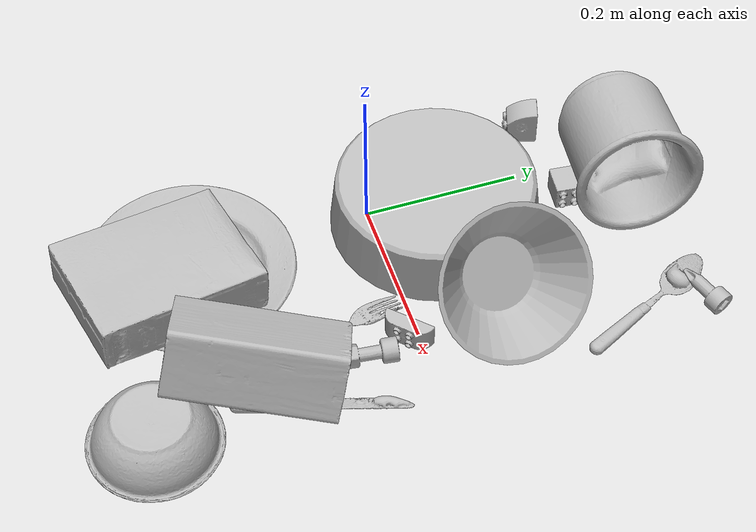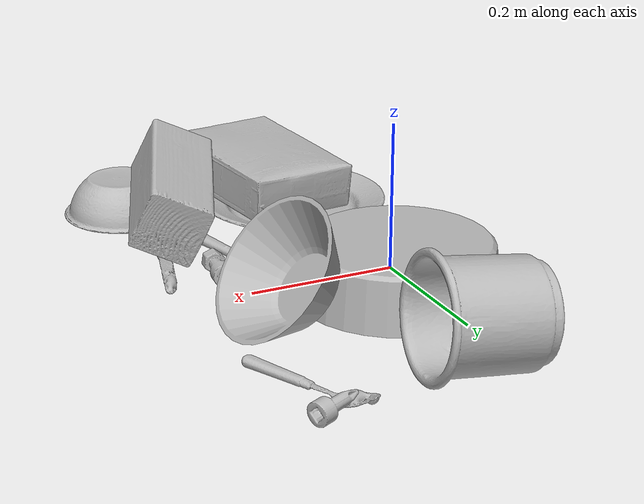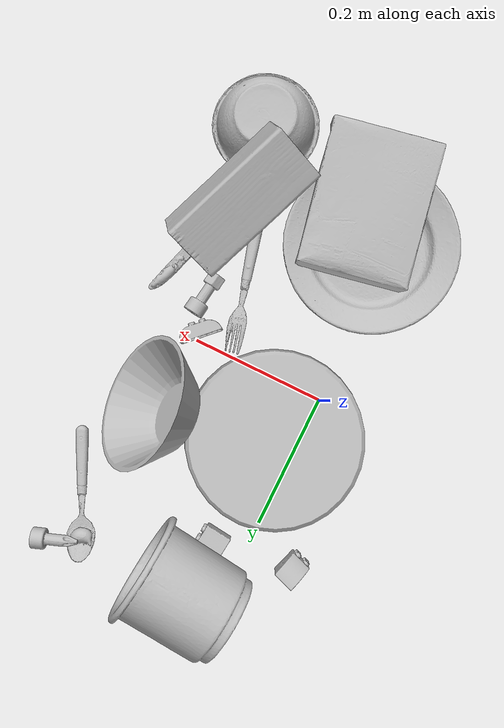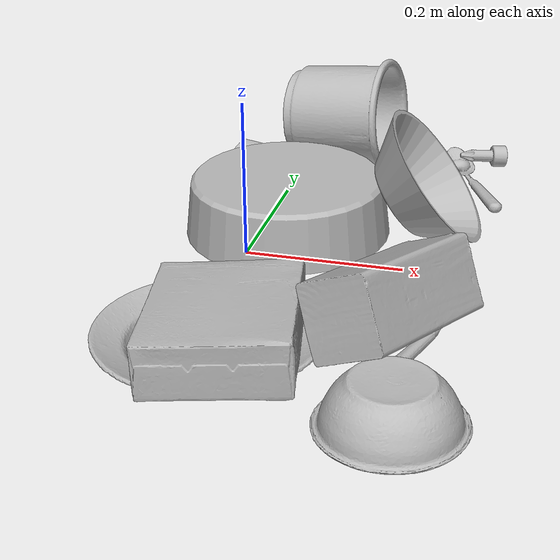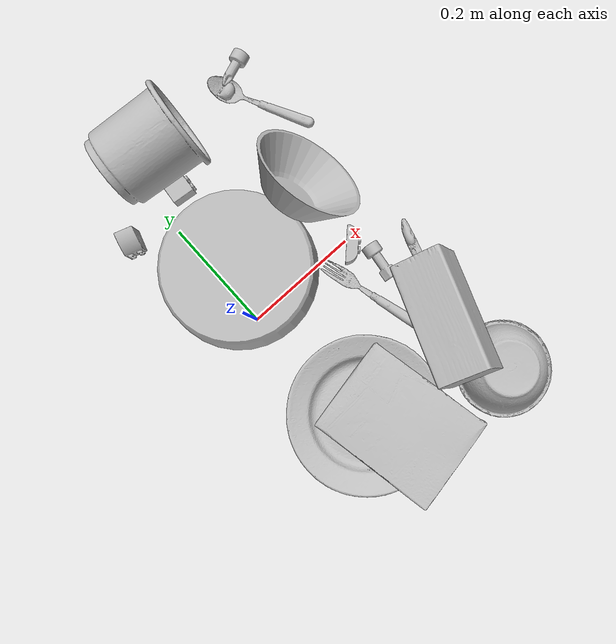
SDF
<sdf version="1.4">
  <world name="default">
    <light name="light1" type="point">
      <pose>0 0 1 0 0 0</pose>
      <diffuse>3 3 3 1</diffuse>
      <specular>3 3 3 1</specular>
    </light>
    <light name="light2" type="point">
      <pose>0 0.5 2 0 0 0</pose>
      <diffuse>1 1 1 1</diffuse>
      <specular>1 1 1 1</specular>
    </light>
    <light name="light3" type="point">
      <pose>0 0.5 2 0 0 0</pose>
      <diffuse>3 3 3 1</diffuse>
      <specular>3 3 3 1</specular>
    </light>
    <scene>
      <ambient>0.7 0.7 0.7</ambient>
    </scene>
    <model name="plate1">
      <link name="link_plate1">
        <collision name="default">
          <geometry>
            <mesh>
              <uri>model://pan_tefal/collision_meshes/collision.obj</uri>
              <scale>1.0 1.0 1.0</scale>
            </mesh>
          </geometry>
          <surface>
            <friction>
              <ode>
                <mu>0.5</mu>
                <mu2>0.5</mu2>
              </ode>
            </friction>
          <contact>
        <ode>
            <max_vel>0</max_vel>
            <min_depth>0.0001</min_depth>
            <kp>1e8</kp>
        </ode>
    </contact></surface>
        </collision>
        <visual name="default">
          <geometry>
            <mesh>
              <uri>model://pan_tefal/visual_meshes/visual.dae</uri>
              <scale>1.0 1.0 1.0</scale>
            </mesh>
          </geometry>
        </visual>
        <inertial>
          <mass>1.083925485610962</mass>
          <pose>-0.00018002053548116237 3.279013617429882e-05 -0.00851493701338768 0.000819031166138591 -0.00033013701589440335 -0.33186472787035126</pose>
          <inertia>
            <ixx>0.0074822875</ixx>
            <iyy>0.0075305253</iyy>
            <izz>0.013773448</izz>
            <ixy>0</ixy>
            <ixz>0</ixz>
            <iyz>0</iyz>
          </inertia>
        </inertial>
      </link>
      <pose>0.0335521437227726 0.07959677278995514 0.03782200813293457 3.141592650503826 8.276100208206071e-09 2.029754342059935</pose>
    </model>
    <model name="plate2">
      <link name="link_plate2">
        <collision name="default">
          <geometry>
            <mesh>
              <uri>model://plate/collision_meshes/collision.obj</uri>
              <scale>1.0 1.0 1.0</scale>
            </mesh>
          </geometry>
          <surface>
            <friction>
              <ode>
                <mu>0.5</mu>
                <mu2>0.5</mu2>
              </ode>
            </friction>
          <contact>
        <ode>
            <max_vel>0</max_vel>
            <min_depth>0.0001</min_depth>
            <kp>1e8</kp>
        </ode>
    </contact></surface>
        </collision>
        <visual name="default">
          <geometry>
            <mesh>
              <uri>model://plate/visual_meshes/visual.dae</uri>
              <scale>1.0 1.0 1.0</scale>
            </mesh>
          </geometry>
        </visual>
        <inertial>
          <mass>0.26740342378616333</mass>
          <pose>-0.00060446304269135 0.00027825793949887156 -0.0010561994276940823 0.0022187903743134635 -0.0032254779444460427 0.4526079808055429</pose>
          <inertia>
            <ixx>0.0012509191</ixx>
            <iyy>0.0012389544</iyy>
            <izz>0.00244661</izz>
            <ixy>0</ixy>
            <ixz>0</ixz>
            <iyz>0</iyz>
          </inertia>
        </inertial>
      </link>
      <pose>0.029918381944298744 -0.2367543876171112 0.013736281543970108 3.272417656744175e-05 -2.7272034409516292e-05 -2.89500040646459</pose>
    </model>
    <model name="bowl1">
      <link name="link_bowl1">
        <collision name="default">
          <geometry>
            <mesh>
              <uri>model://bowl/collision_meshes/collision.obj</uri>
              <scale>1.0 1.0 1.0</scale>
            </mesh>
          </geometry>
          <surface>
            <friction>
              <ode>
                <mu>0.5</mu>
                <mu2>0.5</mu2>
              </ode>
            </friction>
          <contact>
        <ode>
            <max_vel>0</max_vel>
            <min_depth>0.0001</min_depth>
            <kp>1e8</kp>
        </ode>
    </contact></surface>
        </collision>
        <visual name="default">
          <geometry>
            <mesh>
              <uri>model://bowl/visual_meshes/visual.dae</uri>
              <scale>1.0 1.0 1.0</scale>
            </mesh>
          </geometry>
        </visual>
        <inertial>
          <mass>0.062040042132139206</mass>
          <pose>0.00020445157133508474 -0.001030211104080081 -0.0008042659028433263 -0.01576411046463803 0.014546752923574583 0.7140383763158871</pose>
          <inertia>
            <ixx>0.00014251085</ixx>
            <iyy>0.0001393266</iyy>
            <izz>0.00023975229</izz>
            <ixy>0</ixy>
            <ixz>0</ixz>
            <iyz>0</iyz>
          </inertia>
        </inertial>
      </link>
      <pose>0.2505907416343689 -0.33529046177864075 0.02723502367734909 -3.132838349852833 -0.00032978728688635577 1.372606450752551</pose>
    </model>
    <model name="bowl2">
      <link name="link_bowl2">
        <collision name="default">
          <geometry>
            <mesh>
              <uri>model://bowl_a/collision_meshes/collision.obj</uri>
              <scale>1.0 1.0 1.0</scale>
            </mesh>
          </geometry>
          <surface>
            <friction>
              <ode>
                <mu>0.5</mu>
                <mu2>0.5</mu2>
              </ode>
            </friction>
          <contact>
        <ode>
            <max_vel>0</max_vel>
            <min_depth>0.0001</min_depth>
            <kp>1e8</kp>
        </ode>
    </contact></surface>
        </collision>
        <visual name="default">
          <geometry>
            <mesh>
              <uri>model://bowl_a/visual_meshes/visual.dae</uri>
              <scale>1.0 1.0 1.0</scale>
            </mesh>
          </geometry>
        </visual>
        <inertial>
          <mass>0.2882154881954193</mass>
          <pose>0.00027867534663528204 4.731079752673395e-05 -0.0013765293406322598 -0.0009805311525578244 -0.0010938248781945461 -0.19124031319294812</pose>
          <inertia>
            <ixx>0.00082056265</ixx>
            <iyy>0.0008256004</iyy>
            <izz>0.001459402</izz>
            <ixy>0</ixy>
            <ixz>0</ixz>
            <iyz>0</iyz>
          </inertia>
        </inertial>
      </link>
      <pose>0.19926849007606506 0.11066332459449768 0.06361167132854462 0.9120390277658386 0.1987110359366224 1.5002614612802825</pose>
    </model>
    <model name="silverware1">
      <link name="link_silverware1">
        <collision name="default">
          <geometry>
            <mesh>
              <uri>model://fork/collision_meshes/collision.obj</uri>
              <scale>1.0 1.0 1.0</scale>
            </mesh>
          </geometry>
          <surface>
            <friction>
              <ode>
                <mu>0.5</mu>
                <mu2>0.5</mu2>
              </ode>
            </friction>
          <contact>
        <ode>
            <max_vel>0</max_vel>
            <min_depth>0.0001</min_depth>
            <kp>1e8</kp>
        </ode>
    </contact></surface>
        </collision>
        <visual name="default">
          <geometry>
            <mesh>
              <uri>model://fork/visual_meshes/visual.dae</uri>
              <scale>1.0 1.0 1.0</scale>
            </mesh>
          </geometry>
        </visual>
        <inertial>
          <mass>0.01398836076259613</mass>
          <pose>-0.02957003563642502 0.00046588244731538 0.0003218861238565296 -0.013550934691899108 -0.010977833142804767 0.01445389655901604</pose>
          <inertia>
            <ixx>4.903713e-07</ixx>
            <iyy>3.6519592e-05</iyy>
            <izz>3.673893e-05</izz>
            <ixy>0</ixy>
            <ixz>0</ixz>
            <iyz>0</iyz>
          </inertia>
        </inertial>
      </link>
      <pose>0.17046426236629486 -0.10081391036510468 0.007446599658578634 -3.0634997201284717 0.0028359672488307676 1.8317701015909373</pose>
    </model>
    <model name="box1">
      <link name="link_box1">
        <collision name="default">
          <geometry>
            <mesh>
              <uri>model://cracker_box/collision_meshes/collision.obj</uri>
              <scale>1.0 1.0 1.0</scale>
            </mesh>
          </geometry>
          <surface>
            <friction>
              <ode>
                <mu>0.5</mu>
                <mu2>0.5</mu2>
              </ode>
            </friction>
          <contact>
        <ode>
            <max_vel>0</max_vel>
            <min_depth>0.0001</min_depth>
            <kp>1e8</kp>
        </ode>
    </contact></surface>
        </collision>
        <visual name="default">
          <geometry>
            <mesh>
              <uri>model://cracker_box/visual_meshes/visual.dae</uri>
              <scale>1.0 1.0 1.0</scale>
            </mesh>
          </geometry>
        </visual>
        <inertial>
          <mass>3.3038947582244873</mass>
          <pose>0.0009464139584451914 0.00025434247800149024 -0.0017029535956680775 -0.00031620753779881404 -0.011106489600569465 0.002546794535826719</pose>
          <inertia>
            <ixx>0.008403633</ixx>
            <iyy>0.013876048</iyy>
            <izz>0.019802397</izz>
            <ixy>0</ixy>
            <ixz>0</ixz>
            <iyz>0</iyz>
          </inertia>
        </inertial>
      </link>
      <pose>0.06034260615706444 -0.2782832980155945 0.0555969774723053 3.09341420181859 0.060882627432997286 1.771454360442552</pose>
    </model>
    <model name="box2">
      <link name="link_box2">
        <collision name="default">
          <geometry>
            <mesh>
              <uri>model://wood_block/collision_meshes/collision.obj</uri>
              <scale>1.0 1.0 1.0</scale>
            </mesh>
          </geometry>
          <surface>
            <friction>
              <ode>
                <mu>0.5</mu>
                <mu2>0.5</mu2>
              </ode>
            </friction>
          <contact>
        <ode>
            <max_vel>0</max_vel>
            <min_depth>0.0001</min_depth>
            <kp>1e8</kp>
        </ode>
    </contact></surface>
        </collision>
        <visual name="default">
          <geometry>
            <mesh>
              <uri>model://wood_block/visual_meshes/visual.dae</uri>
              <scale>1.0 1.0 1.0</scale>
            </mesh>
          </geometry>
        </visual>
        <inertial>
          <mass>1.8317598104476929</mass>
          <pose>-5.813315510749817e-06 -0.000570809468626976 0.0002640858292579651 -0.05220774405774941 -0.005192695034541599 -0.006861378043904631</pose>
          <inertia>
            <ixx>0.0024511719</ixx>
            <iyy>0.0077432534</iyy>
            <izz>0.007714289</izz>
            <ixy>0</ixy>
            <ixz>0</ixz>
            <iyz>0</iyz>
          </inertia>
        </inertial>
      </link>
      <pose>0.22628235816955566 -0.20415425300598145 0.07390059530735016 -1.9944074383823567 0.16665090065963908 1.1749877439412606</pose>
    </model>
    <model name="cup1">
      <link name="link_cup1">
        <collision name="default">
          <geometry>
            <mesh>
              <uri>model://f_cups/collision_meshes/collision.obj</uri>
              <scale>2.0 2.0 2.0</scale>
            </mesh>
          </geometry>
          <surface>
            <friction>
              <ode>
                <mu>0.5</mu>
                <mu2>0.5</mu2>
              </ode>
            </friction>
          <contact>
        <ode>
            <max_vel>0</max_vel>
            <min_depth>0.0001</min_depth>
            <kp>1e8</kp>
        </ode>
    </contact></surface>
        </collision>
        <visual name="default">
          <geometry>
            <mesh>
              <uri>model://f_cups/visual_meshes/visual.dae</uri>
              <scale>2.0 2.0 2.0</scale>
            </mesh>
          </geometry>
        </visual>
        <inertial>
          <mass>0.8281989693641663</mass>
          <pose>-0.006342937704175711 -0.0012480166042223573 -0.007311076857149601 0.7862278170542254 -0.2607923358756499 -0.18237381375543787</pose>
          <inertia>
            <ixx>0.003114117</ixx>
            <iyy>0.0032667436</iyy>
            <izz>0.0034007723</izz>
            <ixy>0</ixy>
            <ixz>0</ixz>
            <iyz>0</iyz>
          </inertia>
        </inertial>
      </link>
      <pose>0.05362320691347122 0.32195010781288147 0.07439468801021576 -1.2529797669947098 -1.2813581478320555 -1.98784980568051</pose>
    </model>
    <model name="silverware2">
      <link name="link_silverware2">
        <collision name="default">
          <geometry>
            <mesh>
              <uri>model://knife/collision_meshes/collision.obj</uri>
              <scale>1.0 1.0 1.0</scale>
            </mesh>
          </geometry>
          <surface>
            <friction>
              <ode>
                <mu>0.5</mu>
                <mu2>0.5</mu2>
              </ode>
            </friction>
          <contact>
        <ode>
            <max_vel>0</max_vel>
            <min_depth>0.0001</min_depth>
            <kp>1e8</kp>
        </ode>
    </contact></surface>
        </collision>
        <visual name="default">
          <geometry>
            <mesh>
              <uri>model://knife/visual_meshes/visual.dae</uri>
              <scale>1.0 1.0 1.0</scale>
            </mesh>
          </geometry>
        </visual>
        <inertial>
          <mass>0.033610157668590546</mass>
          <pose>-0.02378525771200657 0.0015275131445378065 5.0620201363926753e-05 0.07305356746503441 0.01724842347870745 -0.0074098216508425</pose>
          <inertia>
            <ixx>9.539925e-07</ixx>
            <iyy>0.00012912478</iyy>
            <izz>0.00012943202</izz>
            <ixy>0</ixy>
            <ixz>0</ixz>
            <iyz>0</iyz>
          </inertia>
        </inertial>
      </link>
      <pose>0.2631356418132782 -0.13980330526828766 0.005810711998492479 2.8893535264571253 0.025914679085758598 1.280053003716117</pose>
    </model>
    <model name="silverware3">
      <link name="link_silverware3">
        <collision name="default">
          <geometry>
            <mesh>
              <uri>model://spoon/collision_meshes/collision.obj</uri>
              <scale>1.0 1.0 1.0</scale>
            </mesh>
          </geometry>
          <surface>
            <friction>
              <ode>
                <mu>0.5</mu>
                <mu2>0.5</mu2>
              </ode>
            </friction>
          <contact>
        <ode>
            <max_vel>0</max_vel>
            <min_depth>0.0001</min_depth>
            <kp>1e8</kp>
        </ode>
    </contact></surface>
        </collision>
        <visual name="default">
          <geometry>
            <mesh>
              <uri>model://spoon/visual_meshes/visual.dae</uri>
              <scale>1.0 1.0 1.0</scale>
            </mesh>
          </geometry>
        </visual>
        <inertial>
          <mass>0.03036251850426197</mass>
          <pose>-0.005526314955204725 -0.0016034168656915426 -0.0007271655485965312 0.035217258575681115 -0.03906584346489495 0.006150616147242728</pose>
          <inertia>
            <ixx>1.6888126e-06</ixx>
            <iyy>0.00011552838</iyy>
            <izz>0.00011636122</izz>
            <ixy>0</ixy>
            <ixz>0</ixz>
            <iyz>0</iyz>
          </inertia>
        </inertial>
      </link>
      <pose>0.24944208562374115 0.2734958529472351 0.008385262452065945 0.0067370874231771054 0.026893279123422435 2.022428118083001</pose>
    </model>
    <model name="toy1">
      <link name="link_toy1">
        <collision name="default">
          <geometry>
            <mesh>
              <uri>model://d_lego_duplo/collision_meshes/collision.obj</uri>
              <scale>1.0 1.0 1.0</scale>
            </mesh>
          </geometry>
          <surface>
            <friction>
              <ode>
                <mu>0.5</mu>
                <mu2>0.5</mu2>
              </ode>
            </friction>
          <contact>
        <ode>
            <max_vel>0</max_vel>
            <min_depth>0.0001</min_depth>
            <kp>1e8</kp>
        </ode>
    </contact></surface>
        </collision>
        <visual name="default">
          <geometry>
            <mesh>
              <uri>model://d_lego_duplo/visual_meshes/visual.dae</uri>
              <scale>1.0 1.0 1.0</scale>
            </mesh>
          </geometry>
        </visual>
        <inertial>
          <mass>0.05888136848807335</mass>
          <pose>0.00283056334592402 0.00016366125782951713 0.0008589810458943248 0.0801088994423302 -0.3835518637869403 0.0010296847698221781</pose>
          <inertia>
            <ixx>1.1398561e-05</ixx>
            <iyy>1.6177655e-05</iyy>
            <izz>1.5601077e-05</izz>
            <ixy>0</ixy>
            <ixz>0</ixz>
            <iyz>0</iyz>
          </inertia>
        </inertial>
      </link>
      <pose>-0.0707777664065361 0.23309843242168427 0.024197010323405266 2.0080419434674672 1.5707908938457853 0.11524629897613045</pose>
    </model>
    <model name="toy2">
      <link name="link_toy2">
        <collision name="default">
          <geometry>
            <mesh>
              <uri>model://d_toy_airplane/collision_meshes/collision.obj</uri>
              <scale>1.0 1.0 1.0</scale>
            </mesh>
          </geometry>
          <surface>
            <friction>
              <ode>
                <mu>0.5</mu>
                <mu2>0.5</mu2>
              </ode>
            </friction>
          <contact>
        <ode>
            <max_vel>0</max_vel>
            <min_depth>0.0001</min_depth>
            <kp>1e8</kp>
        </ode>
    </contact></surface>
        </collision>
        <visual name="default">
          <geometry>
            <mesh>
              <uri>model://d_toy_airplane/visual_meshes/visual.dae</uri>
              <scale>1.0 1.0 1.0</scale>
            </mesh>
          </geometry>
        </visual>
        <inertial>
          <mass>0.019283337518572807</mass>
          <pose>9.410297934664413e-05 -5.809335198136978e-05 -0.011728096753358841 0.00026677547083937895 0.00467899750463603 0.5194224971352938</pose>
          <inertia>
            <ixx>5.7807692e-06</ixx>
            <iyy>5.78513e-06</iyy>
            <izz>1.7452522e-06</izz>
            <ixy>0</ixy>
            <ixz>0</ixz>
            <iyz>0</iyz>
          </inertia>
        </inertial>
      </link>
      <pose>0.25411707162857056 0.34835487604141235 0.017632735893130302 1.4405739067129468 -0.9464747466398922 -1.0990246021421592</pose>
    </model>
    <model name="toy3">
      <link name="link_toy3">
        <collision name="default">
          <geometry>
            <mesh>
              <uri>model://b_lego_duplo/collision_meshes/collision.obj</uri>
              <scale>1.0 1.0 1.0</scale>
            </mesh>
          </geometry>
          <surface>
            <friction>
              <ode>
                <mu>0.5</mu>
                <mu2>0.5</mu2>
              </ode>
            </friction>
          <contact>
        <ode>
            <max_vel>0</max_vel>
            <min_depth>0.0001</min_depth>
            <kp>1e8</kp>
        </ode>
    </contact></surface>
        </collision>
        <visual name="default">
          <geometry>
            <mesh>
              <uri>model://b_lego_duplo/visual_meshes/visual.dae</uri>
              <scale>1.0 1.0 1.0</scale>
            </mesh>
          </geometry>
        </visual>
        <inertial>
          <mass>0.03460631147027016</mass>
          <pose>-0.00011053022171836346 -9.15238524612505e-06 0.0019294291269034147 -0.037494934713503944 -0.026353982766830427 0.45190023703794546</pose>
          <inertia>
            <ixx>7.082442e-06</ixx>
            <iyy>7.1300533e-06</iyy>
            <izz>6.310225e-06</izz>
            <ixy>0</ixy>
            <ixz>0</ixz>
            <iyz>0</iyz>
          </inertia>
        </inertial>
      </link>
      <pose>0.050518494099378586 0.24871313571929932 0.016180509701371193 0.042482991502096584 -1.5623971274389796 2.9952648924813854</pose>
    </model>
    <model name="toy4">
      <link name="link_toy4">
        <collision name="default">
          <geometry>
            <mesh>
              <uri>model://c_toy_airplane/collision_meshes/collision.obj</uri>
              <scale>1.0 1.0 1.0</scale>
            </mesh>
          </geometry>
          <surface>
            <friction>
              <ode>
                <mu>0.5</mu>
                <mu2>0.5</mu2>
              </ode>
            </friction>
          <contact>
        <ode>
            <max_vel>0</max_vel>
            <min_depth>0.0001</min_depth>
            <kp>1e8</kp>
        </ode>
    </contact></surface>
        </collision>
        <visual name="default">
          <geometry>
            <mesh>
              <uri>model://c_toy_airplane/visual_meshes/visual.dae</uri>
              <scale>1.0 1.0 1.0</scale>
            </mesh>
          </geometry>
        </visual>
        <inertial>
          <mass>0.03008922003209591</mass>
          <pose>-0.00023024248366709799 -4.429292062013701e-07 -0.006080532446503639 -0.006192764609865116 -0.016797726061543002 0.7654936540566961</pose>
          <inertia>
            <ixx>1.3816358e-05</ixx>
            <iyy>1.3777365e-05</iyy>
            <izz>3.2438072e-06</izz>
            <ixy>0</ixy>
            <ixz>0</ixz>
            <iyz>0</iyz>
          </inertia>
        </inertial>
      </link>
      <pose>0.2177734673023224 -0.06607231497764587 0.015019115060567856 -1.5914956635086976 -0.10110364302105339 3.0040719890060847</pose>
    </model>
    <model name="toy5">
      <link name="link_toy5">
        <collision name="default">
          <geometry>
            <mesh>
              <uri>model://a_lego_duplo/collision_meshes/collision.obj</uri>
              <scale>1.0 1.0 1.0</scale>
            </mesh>
          </geometry>
          <surface>
            <friction>
              <ode>
                <mu>0.5</mu>
                <mu2>0.5</mu2>
              </ode>
            </friction>
          <contact>
        <ode>
            <max_vel>0</max_vel>
            <min_depth>0.0001</min_depth>
            <kp>1e8</kp>
        </ode>
    </contact></surface>
        </collision>
        <visual name="default">
          <geometry>
            <mesh>
              <uri>model://a_lego_duplo/visual_meshes/visual.dae</uri>
              <scale>1.0 1.0 1.0</scale>
            </mesh>
          </geometry>
        </visual>
        <inertial>
          <mass>0.02472195029258728</mass>
          <pose>-0.00011337580508552492 0.00018517558055464178 0.0003692609316203743 -0.014116968053030856 -0.00012565531185804749 6.140757465531037e-05</pose>
          <inertia>
            <ixx>3.1695524e-06</ixx>
            <iyy>7.100487e-06</iyy>
            <izz>8.795534e-06</izz>
            <ixy>0</ixy>
            <ixz>0</ixz>
            <iyz>0</iyz>
          </inertia>
        </inertial>
      </link>
      <pose>0.20282666385173798 -0.016084028407931328 0.016109004616737366 1.570795595669832 6.245799949273198e-08 0.7828079902777768</pose>
    </model>
  <physics type="ode">
      <max_contacts>50</max_contacts>
      <ode>
        <solver>
          <type>quick</type>
          <iters>75</iters>
        </solver>
        <constraints>
          <contact_max_correcting_vel>0</contact_max_correcting_vel>
          <contact_surface_layer>0</contact_surface_layer>
        </constraints>
      </ode>
    </physics></world>
</sdf>
